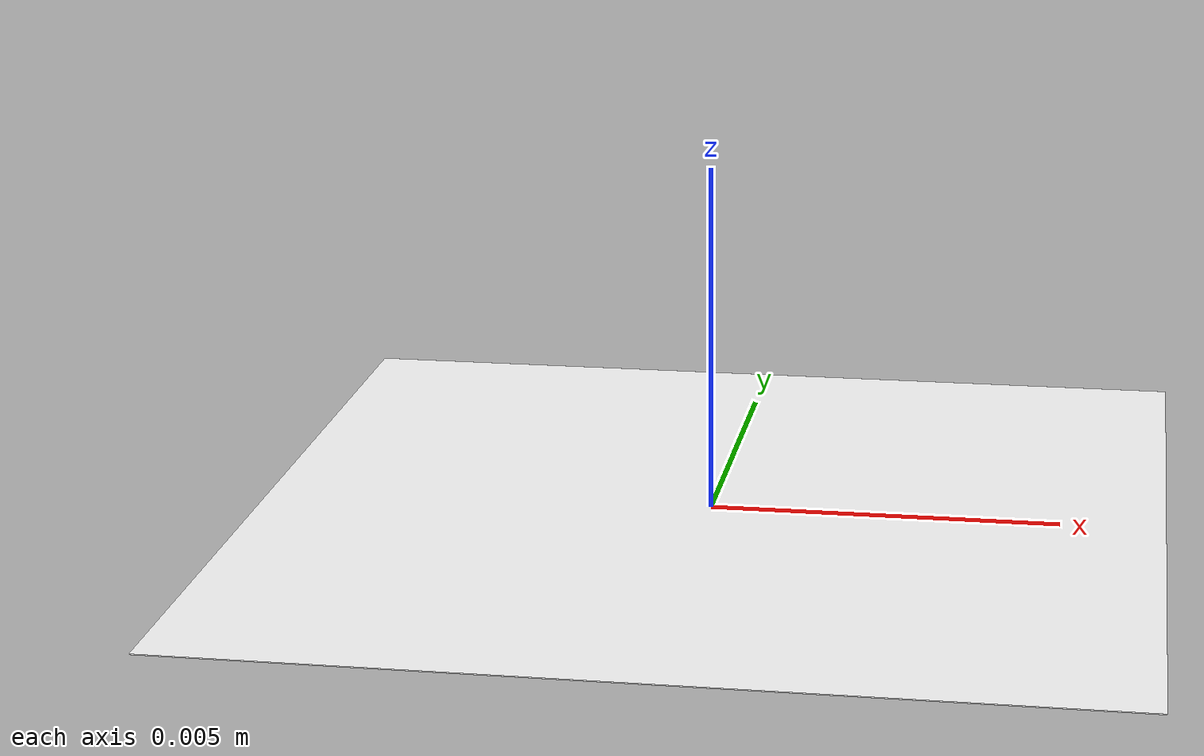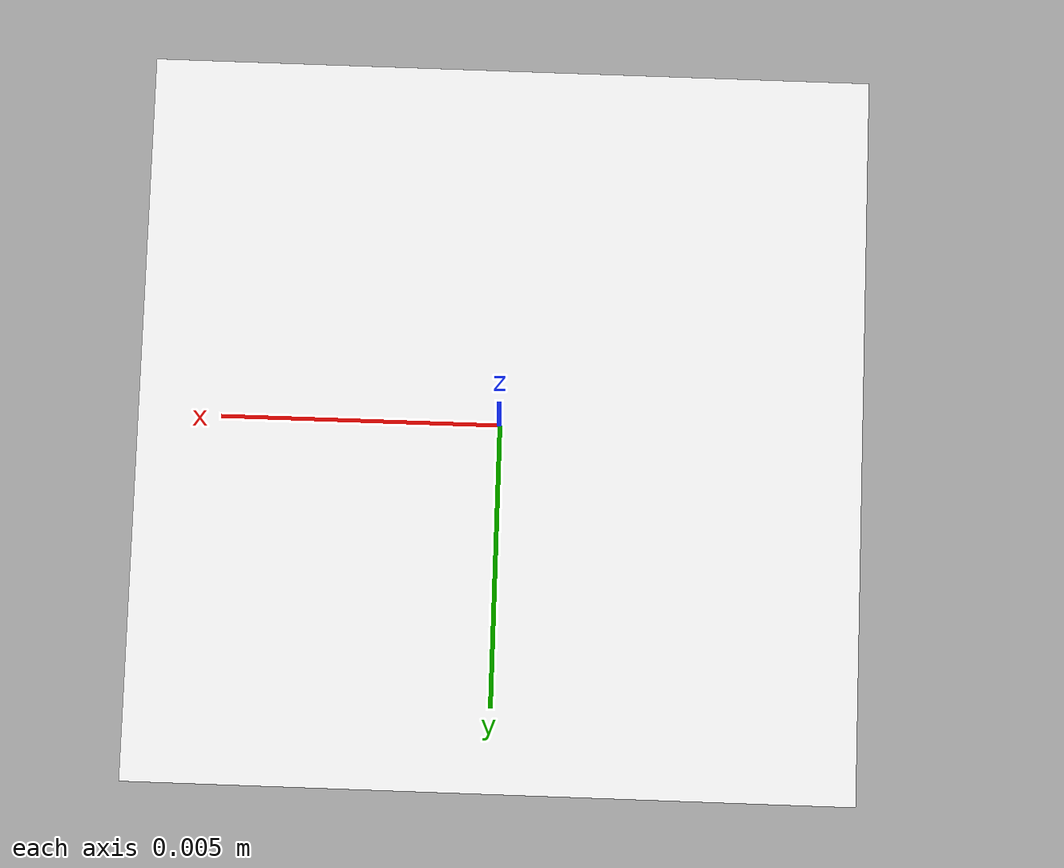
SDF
<?xml version="1.0" ?>
    <sdf version="1.5">
        <model name="white">
            <static>true</static>
                <link name="link">
                    <pose>0 0 0 0 0 0</pose>
                    <visual name="visual">
                        <cast_shadows>false</cast_shadows>
                        <geometry>
                            <plane>
                                <normal>0 0 1</normal>
                                <size>0.013 0.013</size>
                            </plane>
                        </geometry>
                        <material>
                            <ambient>1 1 1 1</ambient>
                            <diffuse>1 1 1 1</diffuse>
                            <specular>1 1 1 1</specular>
                            <emissive>0.6 0.6 0.6 1</emissive>
                        </material>
                    </visual>
                </link>
        </model>
    </sdf>
